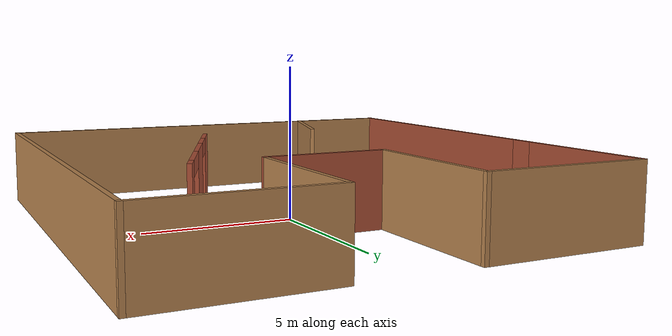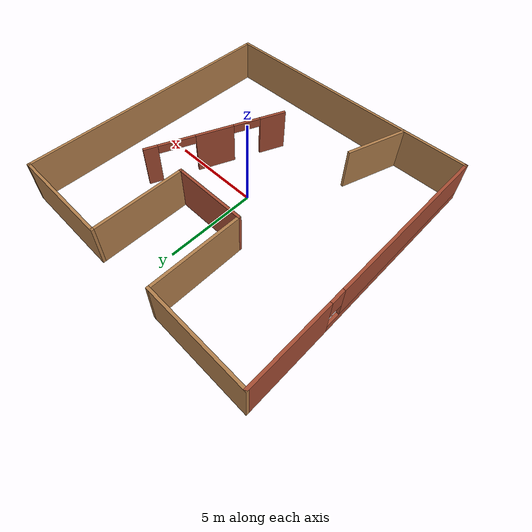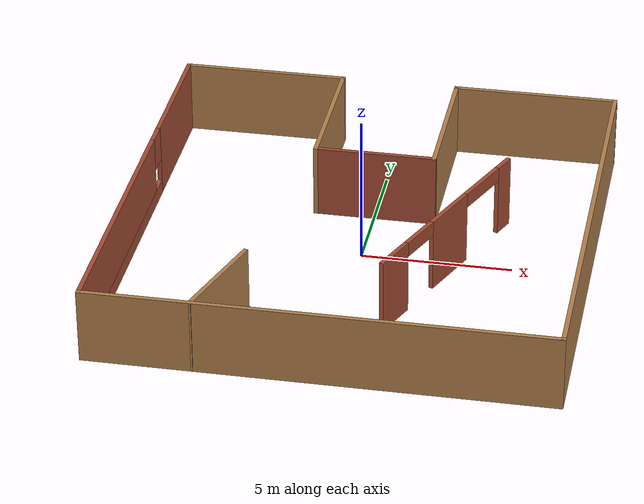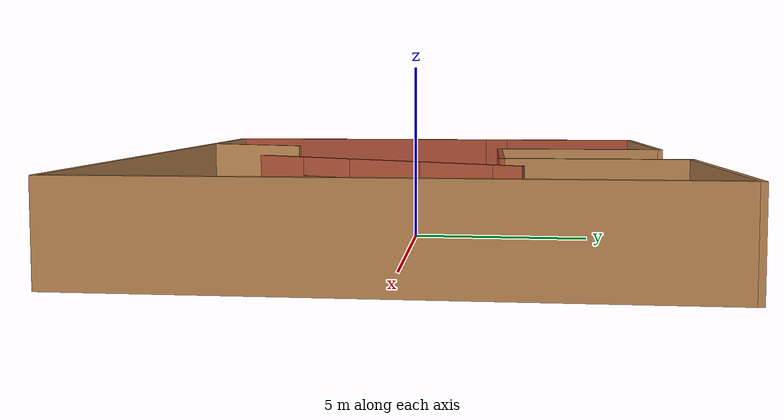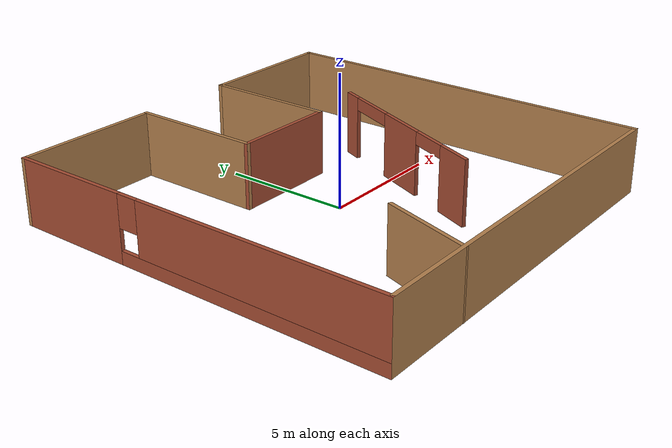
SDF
<?xml version='1.0'?>
<sdf version='1.6'>
  <model name='new_world'>
    <pose frame=''>0 -0.009574 0 0 -0 0</pose>
    <link name='Wall_0'>
      <pose frame=''>-7.5 0.009574 0 0 0 -1.5708</pose>
      <visual name='Wall_0_Visual_0'>
        <pose frame=''>-5.22367 0 1.25 0 -0 0</pose>
        <geometry>
          <box>
            <size>4.70266 0.15 2.5</size>
          </box>
        </geometry>
        <material>
          <script>
            <uri>file://media/materials/scripts/gazebo.material</uri>
            <name>Gazebo/Bricks</name>
          </script>
          <ambient>1 1 1 1</ambient>
        </material>
        <meta>
          <layer>0</layer>
        </meta>
      </visual>
      <collision name='Wall_0_Collision_0'>
        <geometry>
          <box>
            <size>4.70266 0.15 2.5</size>
          </box>
        </geometry>
        <pose frame=''>-5.22367 0 1.25 0 -0 0</pose>
      </collision>
      <visual name='Wall_0_Visual_1'>
        <pose frame=''>2.35133 0 0.25 0 -0 0</pose>
        <geometry>
          <box>
            <size>10.4473 0.15 0.5</size>
          </box>
        </geometry>
        <material>
          <script>
            <uri>file://media/materials/scripts/gazebo.material</uri>
            <name>Gazebo/Bricks</name>
          </script>
          <ambient>1 1 1 1</ambient>
        </material>
        <meta>
          <layer>0</layer>
        </meta>
      </visual>
      <collision name='Wall_0_Collision_1'>
        <geometry>
          <box>
            <size>10.4473 0.15 0.5</size>
          </box>
        </geometry>
        <pose frame=''>2.35133 0 0.25 0 -0 0</pose>
      </collision>
      <visual name='Wall_0_Visual_2'>
        <pose frame=''>2.75133 0 1.5 0 -0 0</pose>
        <geometry>
          <box>
            <size>9.64734 0.15 2</size>
          </box>
        </geometry>
        <material>
          <script>
            <uri>file://media/materials/scripts/gazebo.material</uri>
            <name>Gazebo/Bricks</name>
          </script>
          <ambient>1 1 1 1</ambient>
        </material>
        <meta>
          <layer>0</layer>
        </meta>
      </visual>
      <collision name='Wall_0_Collision_2'>
        <geometry>
          <box>
            <size>9.64734 0.15 2</size>
          </box>
        </geometry>
        <pose frame=''>2.75133 0 1.5 0 -0 0</pose>
      </collision>
      <visual name='Wall_0_Visual_3'>
        <pose frame=''>-2.47234 0 1.9 0 -0 0</pose>
        <geometry>
          <box>
            <size>0.8 0.15 1.2</size>
          </box>
        </geometry>
        <material>
          <script>
            <uri>file://media/materials/scripts/gazebo.material</uri>
            <name>Gazebo/Bricks</name>
          </script>
          <ambient>1 1 1 1</ambient>
        </material>
        <meta>
          <layer>0</layer>
        </meta>
      </visual>
      <collision name='Wall_0_Collision_3'>
        <geometry>
          <box>
            <size>0.8 0.15 1.2</size>
          </box>
        </geometry>
        <pose frame=''>-2.47234 0 1.9 0 -0 0</pose>
      </collision>
    </link>
    <link name='Wall_1'>
      <collision name='Wall_1_Collision'>
        <geometry>
          <box>
            <size>15.15 0.15 2.5</size>
          </box>
        </geometry>
        <pose frame=''>0 0 1.25 0 -0 0</pose>
      </collision>
      <visual name='Wall_1_Visual'>
        <pose frame=''>0 0 1.25 0 -0 0</pose>
        <geometry>
          <box>
            <size>15.15 0.15 2.5</size>
          </box>
        </geometry>
        <material>
          <script>
            <uri>file://media/materials/scripts/gazebo.material</uri>
            <name>Gazebo/Wood</name>
          </script>
          <ambient>1 1 1 1</ambient>
        </material>
        <meta>
          <layer>0</layer>
        </meta>
      </visual>
      <pose frame=''>0 -7.49043 0 0 -0 0</pose>
    </link>
    <link name='Wall_13'>
      <pose frame=''>2.912 -0.640426 0 0 -0 1.17222</pose>
      <visual name='Wall_13_Visual_0'>
        <pose frame=''>-3.18174 0 1.25 0 -0 0</pose>
        <geometry>
          <box>
            <size>1.47518 0.15 2.5</size>
          </box>
        </geometry>
        <material>
          <script>
            <uri>file://media/materials/scripts/gazebo.material</uri>
            <name>Gazebo/Bricks</name>
          </script>
          <ambient>1 1 1 1</ambient>
        </material>
        <meta>
          <layer>0</layer>
        </meta>
      </visual>
      <collision name='Wall_13_Collision_0'>
        <geometry>
          <box>
            <size>1.47518 0.15 2.5</size>
          </box>
        </geometry>
        <pose frame=''>-3.18174 0 1.25 0 -0 0</pose>
      </collision>
      <visual name='Wall_13_Visual_1'>
        <pose frame=''>0.105356 0 1.25 0 -0 0</pose>
        <geometry>
          <box>
            <size>2.09902 0.15 2.5</size>
          </box>
        </geometry>
        <material>
          <script>
            <uri>file://media/materials/scripts/gazebo.material</uri>
            <name>Gazebo/Bricks</name>
          </script>
          <ambient>1 1 1 1</ambient>
        </material>
        <meta>
          <layer>0</layer>
        </meta>
      </visual>
      <collision name='Wall_13_Collision_1'>
        <geometry>
          <box>
            <size>2.09902 0.15 2.5</size>
          </box>
        </geometry>
        <pose frame=''>0.105356 0 1.25 0 -0 0</pose>
      </collision>
      <visual name='Wall_13_Visual_2'>
        <pose frame=''>3.5371 0 1.25 0 -0 0</pose>
        <geometry>
          <box>
            <size>0.764469 0.15 2.5</size>
          </box>
        </geometry>
        <material>
          <script>
            <uri>file://media/materials/scripts/gazebo.material</uri>
            <name>Gazebo/Bricks</name>
          </script>
          <ambient>1 1 1 1</ambient>
        </material>
        <meta>
          <layer>0</layer>
        </meta>
      </visual>
      <collision name='Wall_13_Collision_2'>
        <geometry>
          <box>
            <size>0.764469 0.15 2.5</size>
          </box>
        </geometry>
        <pose frame=''>3.5371 0 1.25 0 -0 0</pose>
      </collision>
      <visual name='Wall_13_Visual_3'>
        <pose frame=''>-1.69416 0 2.25 0 -0 0</pose>
        <geometry>
          <box>
            <size>1.5 0.15 0.5</size>
          </box>
        </geometry>
        <material>
          <script>
            <uri>file://media/materials/scripts/gazebo.material</uri>
            <name>Gazebo/Bricks</name>
          </script>
          <ambient>1 1 1 1</ambient>
        </material>
        <meta>
          <layer>0</layer>
        </meta>
      </visual>
      <collision name='Wall_13_Collision_3'>
        <geometry>
          <box>
            <size>1.5 0.15 0.5</size>
          </box>
        </geometry>
        <pose frame=''>-1.69416 0 2.25 0 -0 0</pose>
      </collision>
      <visual name='Wall_13_Visual_4'>
        <pose frame=''>2.15487 0 2.25 0 -0 0</pose>
        <geometry>
          <box>
            <size>2 0.15 0.5</size>
          </box>
        </geometry>
        <material>
          <script>
            <uri>file://media/materials/scripts/gazebo.material</uri>
            <name>Gazebo/Bricks</name>
          </script>
          <ambient>1 1 1 1</ambient>
        </material>
        <meta>
          <layer>0</layer>
        </meta>
      </visual>
      <collision name='Wall_13_Collision_4'>
        <geometry>
          <box>
            <size>2 0.15 0.5</size>
          </box>
        </geometry>
        <pose frame=''>2.15487 0 2.25 0 -0 0</pose>
      </collision>
    </link>
    <link name='Wall_2'>
      <collision name='Wall_2_Collision'>
        <geometry>
          <box>
            <size>15.15 0.15 2.5</size>
          </box>
        </geometry>
        <pose frame=''>0 0 1.25 0 -0 0</pose>
      </collision>
      <visual name='Wall_2_Visual'>
        <pose frame=''>0 0 1.25 0 -0 0</pose>
        <geometry>
          <box>
            <size>15.15 0.15 2.5</size>
          </box>
        </geometry>
        <material>
          <script>
            <uri>file://media/materials/scripts/gazebo.material</uri>
            <name>Gazebo/Wood</name>
          </script>
          <ambient>1 1 1 1</ambient>
        </material>
        <meta>
          <layer>0</layer>
        </meta>
      </visual>
      <pose frame=''>7.5 0.009574 0 0 -0 1.5708</pose>
    </link>
    <link name='Wall_3'>
      <collision name='Wall_3_Collision'>
        <geometry>
          <box>
            <size>5.65 0.15 2.5</size>
          </box>
        </geometry>
        <pose frame=''>0 0 1.25 0 -0 0</pose>
      </collision>
      <visual name='Wall_3_Visual'>
        <pose frame=''>0 0 1.25 0 -0 0</pose>
        <geometry>
          <box>
            <size>5.65 0.15 2.5</size>
          </box>
        </geometry>
        <material>
          <script>
            <uri>file://media/materials/scripts/gazebo.material</uri>
            <name>Gazebo/Wood</name>
          </script>
          <ambient>1 1 1 1</ambient>
        </material>
        <meta>
          <layer>0</layer>
        </meta>
      </visual>
      <pose frame=''>4.75 7.50957 0 0 -0 3.14159</pose>
    </link>
    <link name='Wall_4'>
      <collision name='Wall_4_Collision'>
        <geometry>
          <box>
            <size>5.15 0.15 2.5</size>
          </box>
        </geometry>
        <pose frame=''>0 0 1.25 0 -0 0</pose>
      </collision>
      <visual name='Wall_4_Visual'>
        <pose frame=''>0 0 1.25 0 -0 0</pose>
        <geometry>
          <box>
            <size>5.15 0.15 2.5</size>
          </box>
        </geometry>
        <material>
          <script>
            <uri>file://media/materials/scripts/gazebo.material</uri>
            <name>Gazebo/Wood</name>
          </script>
          <ambient>1 1 1 1</ambient>
        </material>
        <meta>
          <layer>0</layer>
        </meta>
      </visual>
      <pose frame=''>2 5.00957 0 0 0 -1.5708</pose>
    </link>
    <link name='Wall_5'>
      <collision name='Wall_5_Collision'>
        <geometry>
          <box>
            <size>4.15 0.15 2.5</size>
          </box>
        </geometry>
        <pose frame=''>0 0 1.25 0 -0 0</pose>
      </collision>
      <visual name='Wall_5_Visual'>
        <pose frame=''>0 0 1.25 0 -0 0</pose>
        <geometry>
          <box>
            <size>4.15 0.15 2.5</size>
          </box>
        </geometry>
        <material>
          <script>
            <uri>file://media/materials/scripts/gazebo.material</uri>
            <name>Gazebo/Bricks</name>
          </script>
          <ambient>1 1 1 1</ambient>
        </material>
        <meta>
          <layer>0</layer>
        </meta>
      </visual>
      <pose frame=''>0 2.50957 0 0 -0 3.14159</pose>
    </link>
    <link name='Wall_6'>
      <collision name='Wall_6_Collision'>
        <geometry>
          <box>
            <size>5.15 0.15 2.5</size>
          </box>
        </geometry>
        <pose frame=''>0 0 1.25 0 -0 0</pose>
      </collision>
      <visual name='Wall_6_Visual'>
        <pose frame=''>0 0 1.25 0 -0 0</pose>
        <geometry>
          <box>
            <size>5.15 0.15 2.5</size>
          </box>
        </geometry>
        <material>
          <script>
            <uri>file://media/materials/scripts/gazebo.material</uri>
            <name>Gazebo/Wood</name>
          </script>
          <ambient>1 1 1 1</ambient>
        </material>
        <meta>
          <layer>0</layer>
        </meta>
      </visual>
      <pose frame=''>-2 5.00957 0 0 -0 1.5708</pose>
    </link>
    <link name='Wall_7'>
      <collision name='Wall_7_Collision'>
        <geometry>
          <box>
            <size>5.65 0.15 2.5</size>
          </box>
        </geometry>
        <pose frame=''>0 0 1.25 0 -0 0</pose>
      </collision>
      <visual name='Wall_7_Visual'>
        <pose frame=''>0 0 1.25 0 -0 0</pose>
        <geometry>
          <box>
            <size>5.65 0.15 2.5</size>
          </box>
        </geometry>
        <material>
          <script>
            <uri>file://media/materials/scripts/gazebo.material</uri>
            <name>Gazebo/Wood</name>
          </script>
          <ambient>1 1 1 1</ambient>
        </material>
        <meta>
          <layer>0</layer>
        </meta>
      </visual>
      <pose frame=''>-4.75 7.50957 0 0 -0 3.14159</pose>
    </link>
    <link name='Wall_9'>
      <collision name='Wall_9_Collision'>
        <geometry>
          <box>
            <size>3.55325 0.15 2.5</size>
          </box>
        </geometry>
        <pose frame=''>0 0 1.25 0 -0 0</pose>
      </collision>
      <visual name='Wall_9_Visual'>
        <pose frame=''>0 0 1.25 0 -0 0</pose>
        <geometry>
          <box>
            <size>3.55325 0.15 2.5</size>
          </box>
        </geometry>
        <material>
          <script>
            <uri>file://media/materials/scripts/gazebo.material</uri>
            <name>Gazebo/Wood</name>
          </script>
          <ambient>1 1 1 1</ambient>
        </material>
        <meta>
          <layer>0</layer>
        </meta>
      </visual>
      <pose frame=''>-3.482 -5.86943 0 0 -0 1.2615</pose>
    </link>
    <static>1</static>
  </model>
</sdf>
